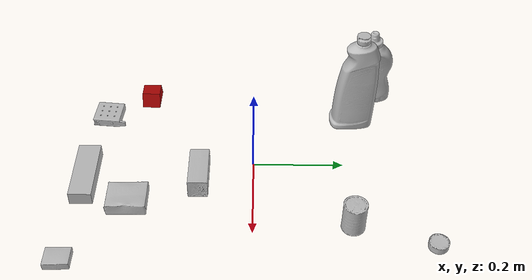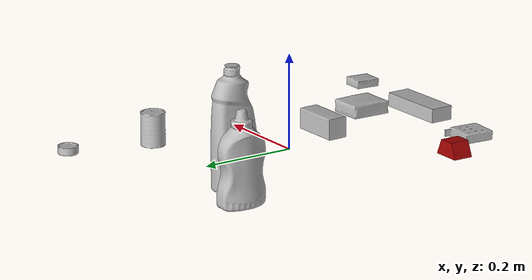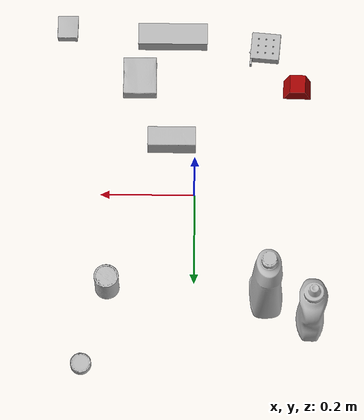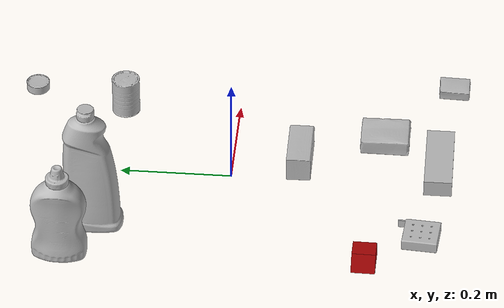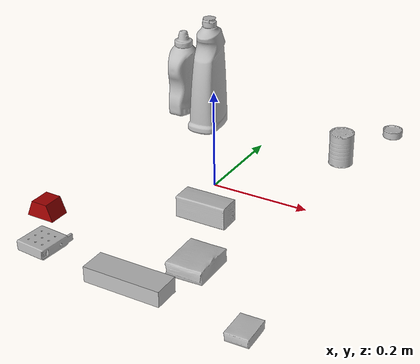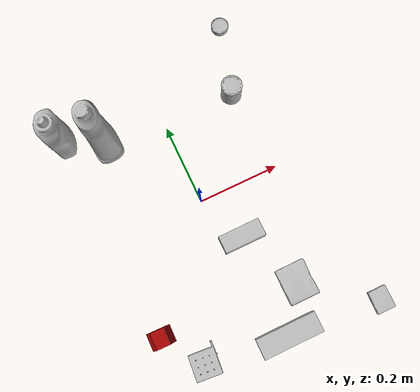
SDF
<?xml version="1.0" ?>
<sdf version="1.4">
  <world name="default">
    <light name="light1" type="point">
      <pose>0 0 1 0 0 0</pose>
      <diffuse>3 3 3 1</diffuse>
      <specular>3 3 3 1</specular>
    </light>
    <light name="light2" type="point">
      <pose>0 0.5 2 0 0 0</pose>
      <diffuse>1 1 1 1</diffuse>
      <specular>1 1 1 1</specular>
    </light>
    <light name="light3" type="point">
      <pose>0 0.5 2 0 0 0</pose>
      <diffuse>3 3 3 1</diffuse>
      <specular>3 3 3 1</specular>
    </light>
    <scene>
      <ambient>0.7 0.7 0.7</ambient>
    </scene>
    <model name="bottle1">
      <link name="link_bottle1">
        <collision name="default">
          <geometry>
            <mesh>
              <uri>model://mustard_bottle/collision_meshes/collision.obj</uri>
              <scale>1.0 1.0 1.0</scale>
            </mesh>
          </geometry>
          <surface>
            <friction>
              <ode>
                <mu>0.5</mu>
                <mu2>0.5</mu2>
              </ode>
            </friction>
          </surface>
        </collision>
        <visual name="default">
          <geometry>
            <mesh>
              <uri>model://mustard_bottle/visual_meshes/visual.dae</uri>
              <scale>1.0 1.0 1.0</scale>
            </mesh>
          </geometry>
        </visual>
        <inertial>
          <mass>0.6762011647224426</mass>
          <pose>0.0005032454500906169 -0.00015647402324248105 -0.0174757931381464 0.0004182330054410876 0.0009465793907204819 0.02485376893997312</pose>
          <inertia>
            <ixx>0.001877718</ixx>
            <iyy>0.0016475386</iyy>
            <izz>0.0004948735</izz>
            <ixy>0</ixy>
            <ixz>0</ixz>
            <iyz>0</iyz>
          </inertia>
        </inertial>
      </link>
      <pose>-0.24157804250717163 0.27884870767593384 0.09611807018518448 0.007806313649945555 -0.007647180889727966 -0.031944084796626214</pose>
    </model>
    <model name="bottle2">
      <link name="link_bottle2">
        <collision name="default">
          <geometry>
            <mesh>
              <uri>model://bleach_cleanser/collision_meshes/collision.obj</uri>
              <scale>1.0 1.0 1.0</scale>
            </mesh>
          </geometry>
          <surface>
            <friction>
              <ode>
                <mu>0.5</mu>
                <mu2>0.5</mu2>
              </ode>
            </friction>
          </surface>
        </collision>
        <visual name="default">
          <geometry>
            <mesh>
              <uri>model://bleach_cleanser/visual_meshes/visual.dae</uri>
              <scale>1.0 1.0 1.0</scale>
            </mesh>
          </geometry>
        </visual>
        <inertial>
          <mass>1.3947629928588867</mass>
          <pose>0.00012193183647468686 0.0037838828284293413 -0.02442161738872528 -0.07381670616230765 0.000420115363335565 -0.006875068774372656</pose>
          <inertia>
            <ixx>0.0067885136</ixx>
            <iyy>0.006325901</iyy>
            <izz>0.0011606595</izz>
            <ixy>0</ixy>
            <ixz>0</ixz>
            <iyz>0</iyz>
          </inertia>
        </inertial>
      </link>
      <pose>-0.14950168132781982 0.22966383397579193 0.12577518820762634 -0.0007097197454512732 0.000922119639048146 0.05789622452564753</pose>
    </model>
    <model name="toy1">
      <link name="link_toy1">
        <collision name="default">
          <geometry>
            <mesh>
              <uri>model://nine_hole_peg_test/collision_meshes/collision.obj</uri>
              <scale>0.5 0.5 0.5</scale>
            </mesh>
          </geometry>
          <surface>
            <friction>
              <ode>
                <mu>0.5</mu>
                <mu2>0.5</mu2>
              </ode>
            </friction>
          </surface>
        </collision>
        <visual name="default">
          <geometry>
            <mesh>
              <uri>model://nine_hole_peg_test/visual_meshes/visual.dae</uri>
              <scale>0.5 0.5 0.5</scale>
            </mesh>
          </geometry>
        </visual>
        <inertial>
          <mass>0.11556825786828995</mass>
          <pose>-0.0023086932487785816 -0.004823807626962662 1.3230343029135838e-05 -0.0014666797633517714 0.0007194158879745651 -0.6342419016734399</pose>
          <inertia>
            <ixx>4.5177487e-05</ixx>
            <iyy>4.2181746e-05</iyy>
            <izz>7.9164296e-05</izz>
            <ixy>0</ixy>
            <ixz>0</ixz>
            <iyz>0</iyz>
          </inertia>
        </inertial>
      </link>
      <pose>-0.1488669514656067 -0.341330349445343 0.010385500267148018 7.104918017634965e-09 2.859279431912504e-09 -0.08325244323571535</pose>
    </model>
    <model name="toy2">
      <link name="link_toy2">
        <collision name="default">
          <geometry>
            <mesh>
              <uri>model://prism/collision_meshes/collision.obj</uri>
              <scale>0.5 0.5 0.5</scale>
            </mesh>
          </geometry>
          <surface>
            <friction>
              <ode>
                <mu>0.5</mu>
                <mu2>0.5</mu2>
              </ode>
            </friction>
          </surface>
        </collision>
        <visual name="default">
          <geometry>
            <mesh>
              <uri>model://prism/visual_meshes/visual.dae</uri>
              <scale>0.5 0.5 0.5</scale>
            </mesh>
          </geometry>
        </visual>
        <inertial>
          <mass>0.033433690667152405</mass>
          <pose>-4.9267986469203606e-05 -2.480786349678965e-07 -0.001693455153144896 0.0 0.00655918030046738 0.0</pose>
          <inertia>
            <ixx>7.543374e-06</ixx>
            <iyy>9.116264e-06</iyy>
            <izz>1.1166334e-05</izz>
            <ixy>0</ixy>
            <ixz>0</ixz>
            <iyz>0</iyz>
          </inertia>
        </inertial>
      </link>
      <pose>-0.2199999988079071 -0.2499997615814209 0.016084998846054077 1.6433502092114142e-08 -1.519861060617725e-08 -0.02057005824864767</pose>
    </model>
    <model name="can1">
      <link name="link_can1">
        <collision name="default">
          <geometry>
            <mesh>
              <uri>model://master_chef_can/collision_meshes/collision.obj</uri>
              <scale>0.5 0.5 0.5</scale>
            </mesh>
          </geometry>
          <surface>
            <friction>
              <ode>
                <mu>0.5</mu>
                <mu2>0.5</mu2>
              </ode>
            </friction>
          </surface>
        </collision>
        <visual name="default">
          <geometry>
            <mesh>
              <uri>model://master_chef_can/visual_meshes/visual.dae</uri>
              <scale>0.5 0.5 0.5</scale>
            </mesh>
          </geometry>
        </visual>
        <inertial>
          <mass>0.10766725987195969</mass>
          <pose>-4.661964703700505e-05 1.3926853625889635e-07 -5.079878610558808e-05 -0.0017995160150511523 0.000647916474058074 -0.6102670332280266</pose>
          <inertia>
            <ixx>6.319339e-05</ixx>
            <iyy>6.2728286e-05</iyy>
            <izz>3.491918e-05</izz>
            <ixy>0</ixy>
            <ixz>0</ixz>
            <iyz>0</iyz>
          </inertia>
        </inertial>
      </link>
      <pose>0.18012185394763947 0.21008481085300446 0.03530198335647583 -1.4216553383111528e-06 -7.369888339332488e-07 0.0043119278821085</pose>
    </model>
    <model name="can2">
      <link name="link_can2">
        <collision name="default">
          <geometry>
            <mesh>
              <uri>model://tuna_fish_can/collision_meshes/collision.obj</uri>
              <scale>0.5 0.5 0.5</scale>
            </mesh>
          </geometry>
          <surface>
            <friction>
              <ode>
                <mu>0.5</mu>
                <mu2>0.5</mu2>
              </ode>
            </friction>
          </surface>
        </collision>
        <visual name="default">
          <geometry>
            <mesh>
              <uri>model://tuna_fish_can/visual_meshes/visual.dae</uri>
              <scale>0.5 0.5 0.5</scale>
            </mesh>
          </geometry>
        </visual>
        <inertial>
          <mass>0.02740846574306488</mass>
          <pose>-2.0361561837489717e-05 -7.256384378706571e-06 -0.0005269024986773729 -0.0017944791545750336 0.000171617609773777 0.24054039995463303</pose>
          <inertia>
            <ixx>3.7056664e-06</ixx>
            <iyy>3.6902204e-06</iyy>
            <izz>6.3409243e-06</izz>
            <ixy>0</ixy>
            <ixz>0</ixz>
            <iyz>0</iyz>
          </inertia>
        </inertial>
      </link>
      <pose>0.22997631132602692 0.3800240755081177 0.008520003408193588 3.8079622532917457e-07 -2.994249624187821e-08 -0.05236530837283592</pose>
    </model>
    <model name="box1">
      <link name="link_box1">
        <collision name="default">
          <geometry>
            <mesh>
              <uri>model://gelatin_box/collision_meshes/collision.obj</uri>
              <scale>1.0 1.0 1.0</scale>
            </mesh>
          </geometry>
          <surface>
            <friction>
              <ode>
                <mu>0.5</mu>
                <mu2>0.5</mu2>
              </ode>
            </friction>
          </surface>
        </collision>
        <visual name="default">
          <geometry>
            <mesh>
              <uri>model://gelatin_box/visual_meshes/visual.dae</uri>
              <scale>1.0 1.0 1.0</scale>
            </mesh>
          </geometry>
        </visual>
        <inertial>
          <mass>0.1693437397480011</mass>
          <pose>0.0004319618456065655 0.00011156872642459348 -0.00036403213744051754 -0.0010503721973280913 -0.004755817758053359 0.01644055760876268</pose>
          <inertia>
            <ixx>0.00011954286</ixx>
            <iyy>8.538885e-05</iyy>
            <izz>0.0001819709</izz>
            <ixy>0</ixy>
            <ixz>0</ixz>
            <iyz>0</iyz>
          </inertia>
        </inertial>
      </link>
      <pose>0.11995125561952591 -0.27007168531417847 0.01516831386834383 0.0055974914500523726 -0.007304571828238593 7.423391828979255e-06</pose>
    </model>
    <model name="box2">
      <link name="link_box2">
        <collision name="default">
          <geometry>
            <mesh>
              <uri>model://pudding_box/collision_meshes/collision.obj</uri>
              <scale>0.5 0.5 0.5</scale>
            </mesh>
          </geometry>
          <surface>
            <friction>
              <ode>
                <mu>0.5</mu>
                <mu2>0.5</mu2>
              </ode>
            </friction>
          </surface>
        </collision>
        <visual name="default">
          <geometry>
            <mesh>
              <uri>model://pudding_box/visual_meshes/visual.dae</uri>
              <scale>0.5 0.5 0.5</scale>
            </mesh>
          </geometry>
        </visual>
        <inertial>
          <mass>0.04695427790284157</mass>
          <pose>0.00024474109522998333 0.00040339428232982755 -0.0002594413817860186 0.005213102262859105 -0.0066037982576109796 0.020079825159299278</pose>
          <inertia>
            <ixx>1.3269848e-05</ixx>
            <iyy>8.9280475e-06</iyy>
            <izz>1.95964e-05</izz>
            <ixy>0</ixy>
            <ixz>0</ixz>
            <iyz>0</iyz>
          </inertia>
        </inertial>
      </link>
      <pose>0.2797413170337677 -0.39025208353996277 0.009862902574241161 0.02234868248216722 -0.011391656946564037 -9.36184502583808e-05</pose>
    </model>
    <model name="box3">
      <link name="link_box3">
        <collision name="default">
          <geometry>
            <mesh>
              <uri>model://wood_block/collision_meshes/collision.obj</uri>
              <scale>0.5 0.5 0.5</scale>
            </mesh>
          </geometry>
          <surface>
            <friction>
              <ode>
                <mu>0.5</mu>
                <mu2>0.5</mu2>
              </ode>
            </friction>
          </surface>
        </collision>
        <visual name="default">
          <geometry>
            <mesh>
              <uri>model://wood_block/visual_meshes/visual.dae</uri>
              <scale>0.5 0.5 0.5</scale>
            </mesh>
          </geometry>
        </visual>
        <inertial>
          <mass>0.2591375410556793</mass>
          <pose>-2.9066577553749084e-06 -0.00028540476341731846 0.00013204291462898254 -0.05221026556657302 -0.005192695801982805 -0.006861378038707315</pose>
          <inertia>
            <ixx>8.669131e-05</ixx>
            <iyy>0.00027385785</iyy>
            <izz>0.00027283354</izz>
            <ixy>0</ixy>
            <ixz>0</ixz>
            <iyz>0</iyz>
          </inertia>
        </inertial>
      </link>
      <pose>0.049941565841436386 -0.11943432688713074 0.022629259154200554 -0.005208564663979708 0.005718697828775862 0.005304427314337902</pose>
    </model>
    <model name="box4">
      <link name="link_box4">
        <collision name="default">
          <geometry>
            <mesh>
              <uri>model://jenga/collision_meshes/collision.obj</uri>
              <scale>1.0 1.0 1.0</scale>
            </mesh>
          </geometry>
          <surface>
            <friction>
              <ode>
                <mu>0.5</mu>
                <mu2>0.5</mu2>
              </ode>
            </friction>
          </surface>
        </collision>
        <visual name="default">
          <geometry>
            <mesh>
              <uri>model://jenga/visual_meshes/visual.dae</uri>
              <scale>1.0 1.0 1.0</scale>
            </mesh>
          </geometry>
        </visual>
        <inertial>
          <mass>0.14610815048217773</mass>
          <pose>-2.502855807051674e-07 -0.00010250010382151231 -4.092339804628864e-05 0.0 -7.342155186052628e-07 0.0</pose>
          <inertia>
            <ixx>4.043167e-05</ixx>
            <iyy>0.0002739639</iyy>
            <izz>0.00029247976</izz>
            <ixy>0</ixy>
            <ixz>0</ixz>
            <iyz>0</iyz>
          </inertia>
        </inertial>
      </link>
      <pose>0.05000049248337746 -0.3698974847793579 0.014999995008111 2.9845122754489994e-09 2.016634177427863e-09 -1.3838305789858324e-07</pose>
    </model>
  </world>
</sdf>
